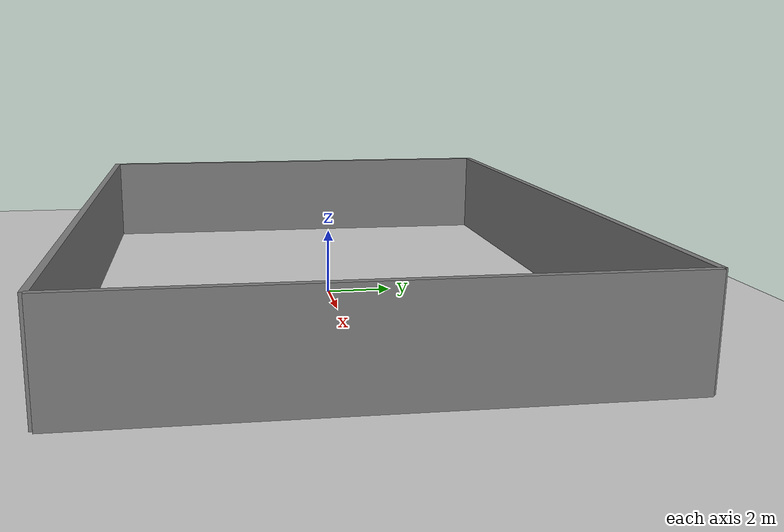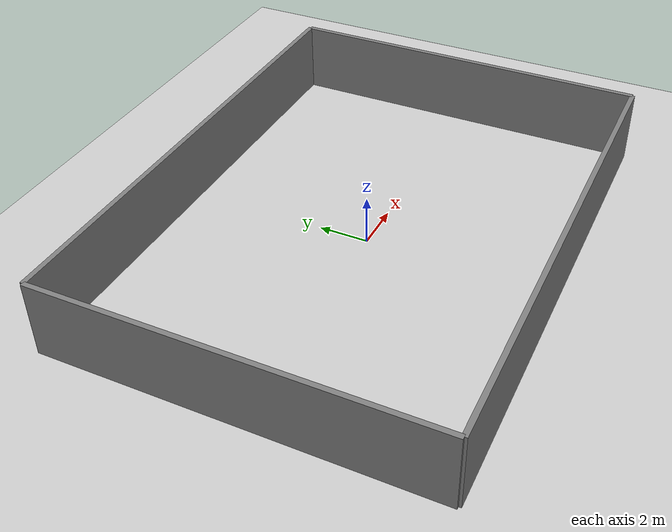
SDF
<?xml version="1.0"?>
<sdf version="1.6">
  <world name="warehouse_world">
    <!-- Add the sun for lighting -->
    <include>
      <uri>model://sun</uri>
    </include>

    <!-- Add a ground plane -->
    <include>
      <uri>model://ground_plane</uri>
    </include>

    <!-- Include our warehouse model -->
    <include>
      <uri>model://warehouse</uri>
      <name>warehouse</name>
      <pose>0 0 0 0 0 0</pose>
    </include>

    <!-- Physics settings -->
    <physics type="ode">
      <real_time_update_rate>1000.0</real_time_update_rate>
      <max_step_size>0.001</max_step_size>
      <real_time_factor>1</real_time_factor>
      <ode>
        <solver>
          <type>quick</type>
          <iters>150</iters>
          <precon_iters>0</precon_iters>
          <sor>1.400000</sor>
        </solver>
        <constraints>
          <cfm>1.000000e-05</cfm>
          <erp>0.200000</erp>
          <contact_max_correcting_vel>2000.000000</contact_max_correcting_vel>
          <contact_surface_layer>0.01000</contact_surface_layer>
        </constraints>
      </ode>
    </physics>
  </world>
</sdf>

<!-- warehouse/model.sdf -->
<sdf version="1.6">
  <model name="warehouse">
    <static>true</static>

    <!-- Main floor -->
    <link name="floor">
      <collision name="floor_collision">
        <geometry>
          <box>
            <size>20 15 0.1</size>
          </box>
        </geometry>
      </collision>
      <visual name="floor_visual">
        <geometry>
          <box>
            <size>20 15 0.1</size>
          </box>
        </geometry>
        <material>
          <ambient>0.8 0.8 0.8 1</ambient>
          <diffuse>0.8 0.8 0.8 1</diffuse>
        </material>
      </visual>
    </link>

    <!-- Wall 1 -->
    <link name="wall1">
      <pose>10 0 1.5 0 0 0</pose>
      <collision name="wall1_collision">
        <geometry>
          <box>
            <size>0.2 15 3</size>
          </box>
        </geometry>
      </collision>
      <visual name="wall1_visual">
        <geometry>
          <box>
            <size>0.2 15 3</size>
          </box>
        </geometry>
        <material>
          <ambient>0.5 0.5 0.5 1</ambient>
          <diffuse>0.5 0.5 0.5 1</diffuse>
        </material>
      </visual>
    </link>

    <!-- Wall 2 -->
    <link name="wall2">
      <pose>-10 0 1.5 0 0 0</pose>
      <collision name="wall2_collision">
        <geometry>
          <box>
            <size>0.2 15 3</size>
          </box>
        </geometry>
      </collision>
      <visual name="wall2_visual">
        <geometry>
          <box>
            <size>0.2 15 3</size>
          </box>
        </geometry>
        <material>
          <ambient>0.5 0.5 0.5 1</ambient>
          <diffuse>0.5 0.5 0.5 1</diffuse>
        </material>
      </visual>
    </link>

    <!-- Wall 3 -->
    <link name="wall3">
      <pose>0 7.5 1.5 0 0 0</pose>
      <collision name="wall3_collision">
        <geometry>
          <box>
            <size>20 0.2 3</size>
          </box>
        </geometry>
      </collision>
      <visual name="wall3_visual">
        <geometry>
          <box>
            <size>20 0.2 3</size>
          </box>
        </geometry>
        <material>
          <ambient>0.5 0.5 0.5 1</ambient>
          <diffuse>0.5 0.5 0.5 1</diffuse>
        </material>
      </visual>
    </link>

    <!-- Wall 4 -->
    <link name="wall4">
      <pose>0 -7.5 1.5 0 0 0</pose>
      <collision name="wall4_collision">
        <geometry>
          <box>
            <size>20 0.2 3</size>
          </box>
        </geometry>
      </collision>
      <visual name="wall4_visual">
        <geometry>
          <box>
            <size>20 0.2 3</size>
          </box>
        </geometry>
        <material>
          <ambient>0.5 0.5 0.5 1</ambient>
          <diffuse>0.5 0.5 0.5 1</diffuse>
        </material>
      </visual>
    </link>
  </model>
</sdf>
